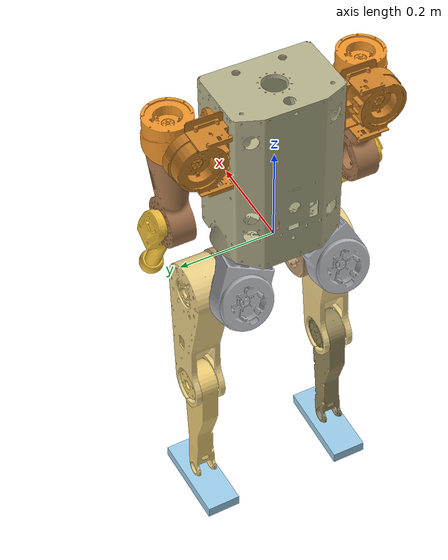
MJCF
<mujoco model="dash_urdf">
  <compiler angle="radian"/>

  <asset>
    <mesh name="Torso" file="assets/Torso.stl"/>
    <mesh name="R_hip" file="assets/R_hip.stl"/>
    <mesh name="R_dist_hip" file="assets/R_dist_hip.stl"/>
    <mesh name="R_upper_leg" file="assets/R_upper_leg.stl"/>
    <mesh name="R_lower_leg" file="assets/R_lower_leg.stl"/>
    <mesh name="R_foot" file="assets/R_foot.stl"/>
    <mesh name="L_hip" file="assets/L_hip.stl"/>
    <mesh name="L_dist_hip" file="assets/L_dist_hip.stl"/>
    <mesh name="L_upper_leg" file="assets/L_upper_leg.stl"/>
    <mesh name="L_lower_leg" file="assets/L_lower_leg.stl"/>
    <mesh name="L_foot" file="assets/L_foot.stl"/>
    <mesh name="R_prox_shoulder" file="assets/R_prox_shoulder.stl"/>
    <mesh name="R_dist_shoulder" file="assets/R_dist_shoulder.stl"/>
    <mesh name="R_upper_arm" file="assets/R_upper_arm.stl"/>
    <mesh name="R_lower_arm" file="assets/R_lower_arm.stl"/>
    <mesh name="L_prox_shoulder" file="assets/L_prox_shoulder.stl"/>
    <mesh name="L_dist_shoulder" file="assets/L_dist_shoulder.stl"/>
    <mesh name="L_upper_arm" file="assets/L_upper_arm.stl"/>
    <mesh name="L_lower_arm" file="assets/L_lower_arm.stl"/>
  </asset>

  <worldbody>
    <geom type="mesh" rgba="0.723666 0.709829 0.56081 1" mesh="Torso"/>
    <body name="r_hip" pos="0.00079603 -0.0747464 0.000544" quat="0.976296 -0.216438 0 0">
      <inertial pos="-0.06169 -0.00013798 -0.0674385" quat="0.96016 0.0516852 0.270974 0.0446536" mass="1.66549" diaginertia="0.00431826 0.00318456 0.00217457"/>
      <joint name="r_hip_yaw" pos="0 0 0" axis="0 0 1" range="-3.14159 3.14159" actuatorfrcrange="-10 10"/>
      <geom type="mesh" rgba="0.683259 0.689928 0.717554 1" mesh="R_hip"/>
      <body name="r_dist_hip" pos="-0.0527293 0.00277237 -0.081917" quat="0.963424 0.203188 0.173047 0.0241648">
        <inertial pos="0.0809441 0.0190504 0.00041627" quat="0.446134 0.470738 0.54063 0.535807" mass="1.80153" diaginertia="0.00478847 0.00367549 0.00220033"/>
        <joint name="r_hip_roll" pos="0 0 0" axis="1 0 0" range="-3.14159 3.14159" actuatorfrcrange="-10 10"/>
        <geom type="mesh" rgba="0.744736 0.611754 0.454058 1" mesh="R_dist_hip"/>
        <body name="r_upper_leg" pos="0.0953 0.0053 0" quat="0.986455 0 -0.164029 0">
          <inertial pos="0.00324991 -0.0459999 -0.0533371" quat="0.706871 -0.0163835 -0.0313558 0.706457" mass="2.55931" diaginertia="0.0239573 0.0226365 0.00427118"/>
          <joint name="r_hip_pitch" pos="0 0 0" axis="0 1 0" range="-3.14159 3.14159" actuatorfrcrange="-10 10"/>
          <geom type="mesh" rgba="0.943618 0.833243 0.539452 1" mesh="R_upper_leg"/>
          <body name="r_lower_leg" pos="0 -0.04245 -0.28">
            <inertial pos="0.00122235 0.0492546 0.0355025" quat="0.707163 -0.00594181 -0.000429317 0.707026" mass="1.18115" diaginertia="0.00883365 0.00857462 0.000823104"/>
            <joint name="r_knee_pitch" pos="0 0 0" axis="0 1 0" range="-3.14159 3.14159" actuatorfrcrange="-10 10"/>
            <geom type="mesh" rgba="0.595371 0.542381 0.364753 1" mesh="R_lower_leg"/>
            <body name="r_foot_pitch" pos="0 0.00034598 -0.28">
              <inertial pos="-0.00130449 -0.0228546 0.0226724" quat="0.515874 0.483605 0.515874 0.483605" mass="0.283056" diaginertia="0.000656907 0.000623973 7.323e-05"/>
              <joint name="r_ankle_pitch" pos="0 0 0" axis="0 1 0" range="-3.14159 3.14159" actuatorfrcrange="-10 10"/>
              <body name="r_foot_roll">
                <inertial pos="-0.00130449 -0.0228546 0.0226724" quat="0.515874 0.483605 0.515874 0.483605" mass="0.283056" diaginertia="0.000656907 0.000623973 7.323e-05"/>
                <joint name="r_ankle_roll" pos="0 0 0" axis="1 0 0" range="-0.3 0.3" actuatorfrcrange="-10 10"/>
                <geom size="0.1 0.0375 0.0125" pos="0 0 -0.04" type="box" rgba="0.615686 0.811765 0.929412 1"/>
              </body>
            </body>
          </body>
        </body>
      </body>
    </body>
    <body name="l_hip" pos="0.00079603 0.0747464 0.000544" quat="0.976296 0.216438 0 0">
      <inertial pos="-0.0616906 0.00016143 -0.0674489" quat="0.960165 -0.0514451 0.271086 -0.0441399" mass="1.66549" diaginertia="0.00431875 0.0031844 0.00217475"/>
      <joint name="l_hip_yaw" pos="0 0 0" axis="0 0 1" range="-3.14159 3.14159" actuatorfrcrange="-10 10"/>
      <geom type="mesh" rgba="0.683259 0.689928 0.717554 1" mesh="L_hip"/>
      <body name="l_dist_hip" pos="-0.05273 -0.00277237 -0.081917" quat="0.963424 -0.203188 0.173047 -0.0241648">
        <inertial pos="0.0809443 -0.0190505 0.00041627" quat="0.536288 0.540159 0.470481 0.446399" mass="1.80153" diaginertia="0.00478845 0.00367534 0.00220041"/>
        <joint name="l_hip_roll" pos="0 0 0" axis="1 0 0" range="-3.14159 3.14159" actuatorfrcrange="-10 10"/>
        <geom type="mesh" rgba="0.744736 0.611754 0.454058 1" mesh="L_dist_hip"/>
        <body name="l_upper_leg" pos="0.0953 -0.0053 0" quat="0.986455 0 -0.164029 0">
          <inertial pos="0.00340206 0.0459999 -0.0533371" quat="0.709726 -0.0309103 -0.0161251 0.703615" mass="2.55931" diaginertia="0.0239548 0.0226336 0.00427128"/>
          <joint name="l_hip_pitch" pos="0 0 0" axis="0 1 0" range="-3.14159 3.14159" actuatorfrcrange="-10 10"/>
          <geom type="mesh" rgba="0.943618 0.833243 0.539452 1" mesh="L_upper_leg"/>
          <body name="l_lower_leg" pos="0 0.04245 -0.28">
            <inertial pos="0.00124297 -0.00087817 -0.0492506" quat="0.707019 -0.00033563 -0.00588715 0.70717" mass="1.18115" diaginertia="0.00883332 0.00857426 0.000823126"/>
            <joint name="l_knee_pitch" pos="0 0 0" axis="0 1 0" range="-3.14159 3.14159" actuatorfrcrange="-10 10"/>
            <geom type="mesh" rgba="0.948139 0.818548 0.473607 1" mesh="L_lower_leg"/>
            <body name="l_foot_pitch" pos="0 0.00034598 -0.28">
              <inertial pos="0 -0.00032762 -0.0228918" quat="0.483605 0.515874 0.483605 0.515874" mass="0.283056" diaginertia="0.000656907 0.000623973 7.323e-05"/>
              <joint name="l_ankle_pitch" pos="0 0 0" axis="0 1 0" range="-3.14159 3.14159" actuatorfrcrange="-10 10"/>
              <body name="l_foot_roll">
                <inertial pos="0 -0.00032762 -0.0228918" quat="0.483605 0.515874 0.483605 0.515874" mass="0.283056" diaginertia="0.000656907 0.000623973 7.323e-05"/>
                <joint name="l_ankle_roll" pos="0 0 0" axis="1 0 0" range="-0.3 0.3" actuatorfrcrange="-10 10"/>
                <geom size="0.1 0.0375 0.0125" pos="0 0 -0.04" type="box" rgba="0.615686 0.811765 0.929412 1"/>
              </body>
            </body>
          </body>
        </body>
      </body>
    </body>
    <body name="r_prox_shoulder" pos="0.020796 -0.1117 0.3">
      <inertial pos="-0.0638541 -0.0594545 -8.464e-05" quat="0.68734 0.692062 -0.155178 -0.156633" mass="1.26433" diaginertia="0.00271013 0.00210315 0.0017068"/>
      <joint name="r_shoulder_pitch" pos="0 0 0" axis="0 1 0" range="-3.14159 3.14159" actuatorfrcrange="-10 10"/>
      <geom type="mesh" rgba="0.819914 0.51932 0.162864 1" mesh="R_prox_shoulder"/>
      <body name="r_dist_shoulder" pos="-0.05 -0.0713 0">
        <inertial pos="0.0551627 -0.0110152 0.0187494" quat="0.0956691 0.63929 -0.0866565 0.758054" mass="1.02859" diaginertia="0.00166989 0.00125774 0.00103113"/>
        <joint name="r_shoulder_roll" pos="0 0 0" axis="1 0 0" range="-3.14159 3.14159" actuatorfrcrange="-10 10"/>
        <geom type="mesh" rgba="0.954951 0.592636 0.169477 1" mesh="R_dist_shoulder"/>
        <body name="r_upper_arm" pos="0.0605 -0.012 0.002">
          <inertial pos="-2.136e-07 -0.00212635 -0.156389" quat="0.707066 -0.00754832 0.00754832 0.707066" mass="1.50071" diaginertia="0.00970874 0.00919509 0.00162113"/>
          <joint name="r_shoulder_yaw" pos="0 0 0" axis="0 0 1" range="-3.14159 3.14159" actuatorfrcrange="-10 10"/>
          <geom type="mesh" rgba="0.654942 0.465554 0.304724 1" mesh="R_upper_arm"/>
          <body name="r_lower_arm" pos="0 -0.023775 -0.2025" quat="0.968912 0 -0.247404 0">
            <inertial pos="-3e-08 0.0082445 -0.103214" quat="0.997346 0.0728135 0 0" mass="0.339126" diaginertia="0.00278269 0.00278265 0.000126918"/>
            <joint name="r_elbow_pitch" pos="0 0 0" axis="0 1 0" range="-3.14159 3.14159" actuatorfrcrange="-10 10"/>
            <geom type="mesh" rgba="0.954585 0.75822 0.229953 1" mesh="R_lower_arm"/>
          </body>
        </body>
      </body>
    </body>
    <body name="l_prox_shoulder" pos="0.020796 0.112 0.3">
      <inertial pos="-0.0638541 0.0594541 -8.46e-05" quat="0.692069 0.687332 0.15663 0.155183" mass="1.26433" diaginertia="0.0027101 0.00210313 0.00170681"/>
      <joint name="l_shoulder_pitch" pos="0 0 0" axis="0 1 0" range="-3.14159 3.14159" actuatorfrcrange="-10 10"/>
      <geom type="mesh" rgba="0.819914 0.51932 0.162864 1" mesh="L_prox_shoulder"/>
      <body name="l_dist_shoulder" pos="-0.05 0.0713 0">
        <inertial pos="0.0551627 0.0108105 0.0187494" quat="-0.0885499 0.639868 0.0872463 0.758364" mass="1.02859" diaginertia="0.00166915 0.00125704 0.00103166"/>
        <joint name="l_shoulder_roll" pos="0 0 0" axis="1 0 0" range="-3.14159 3.14159" actuatorfrcrange="-10 10"/>
        <geom type="mesh" rgba="0.954951 0.592636 0.169477 1" mesh="L_dist_shoulder"/>
        <body name="l_upper_arm" pos="0.0605 0.012 0.002">
          <inertial pos="-2.027e-07 0.00212635 -0.156249" quat="0.707064 0.00774823 -0.00774636 0.707064" mass="1.50071" diaginertia="0.00968948 0.00917565 0.00162095"/>
          <joint name="l_shoulder_yaw" pos="0 0 0" axis="0 0 1" range="-3.14159 3.14159" actuatorfrcrange="-10 10"/>
          <geom type="mesh" rgba="0.654942 0.465554 0.304724 1" mesh="L_upper_arm"/>
          <body name="l_lower_arm" pos="0 0.023775 -0.2025" quat="0.968912 0 -0.247404 0">
            <inertial pos="-3e-08 0.0082445 -0.103214" quat="0.997346 -0.0728135 0 0" mass="0.339126" diaginertia="0.00278269 0.00278265 0.000126918"/>
            <joint name="l_elbow_pitch" pos="0 0 0" axis="0 1 0" range="-3.14159 3.14159" actuatorfrcrange="-10 10"/>
            <geom type="mesh" rgba="0.954585 0.75822 0.229953 1" mesh="L_lower_arm"/>
          </body>
        </body>
      </body>
    </body>
  </worldbody>
</mujoco>
